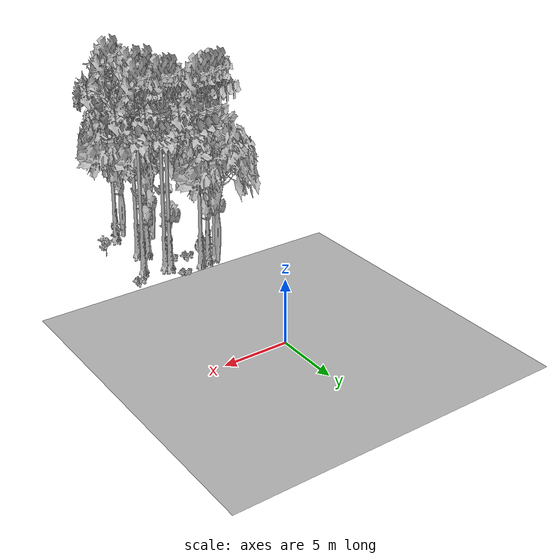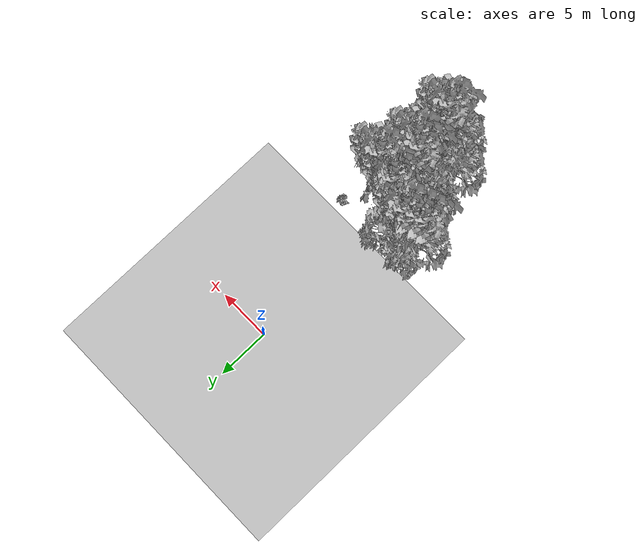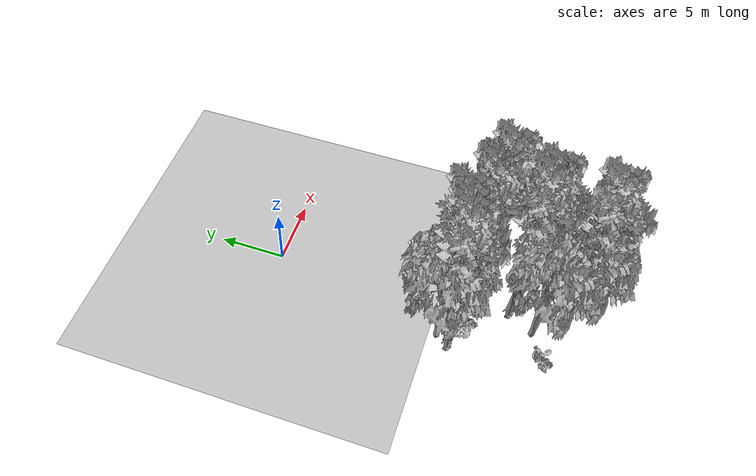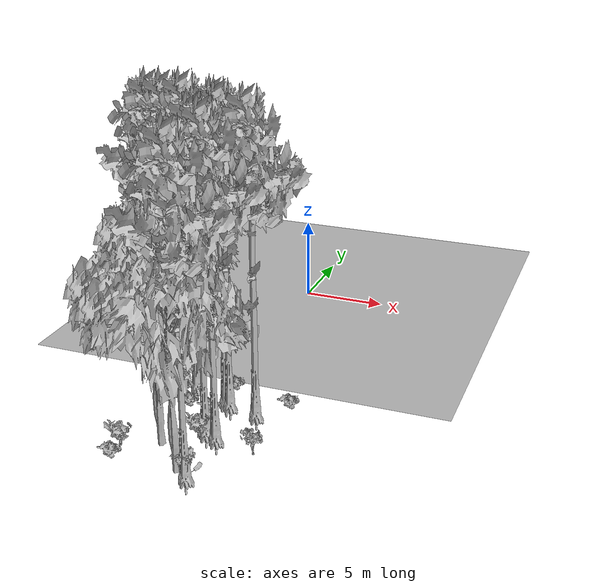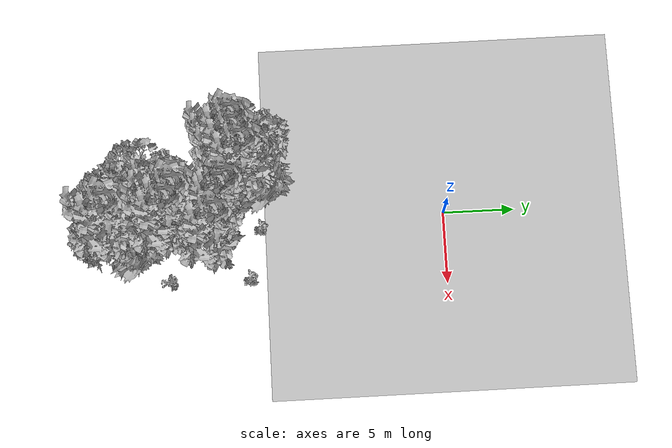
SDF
<sdf version="1.7">
 <world name="default">
  <model name="ground_plane">
   <static>1</static>
   <link name="link">
    <collision name="collision">
     <pose>-50 0 0 0 -0 0</pose>
     <geometry><plane><normal>0 0 1</normal><size>80 80</size></plane></geometry>
     <surface><contact><ode><min_depth>0.01</min_depth><max_vel>0</max_vel></ode></contact></surface>
    </collision>
    <visual name="grass">
     <cast_shadows>0</cast_shadows>
     <geometry>
      <mesh>
       <scale>0.46714285714285714 0.46714285714285714 0.1</scale>
       <uri>file://grass_plane/meshes/grass_plane.dae</uri>
      </mesh>
     </geometry>
    </visual>
   </link>
  </model>
  <model name="Tree 70">
   <static>1</static>
   <pose>-0.6018024485470406 -19.78445809399159 0 1.57079 -0 0</pose>
   <link name="link">
    <collision name="collision">
     <geometry><mesh><scale>3.5 5 3.5</scale><uri>model://tree_2/meshes/tree_2.obj</uri></mesh></geometry>
    </collision>
    <visual name="visual">
     <geometry><mesh><scale>3.5 5 3.5</scale><uri>model://tree_2/meshes/tree_2.obj</uri></mesh></geometry>
    </visual>
   </link>
  </model>
  <model name="Tree 131">
   <static>1</static>
   <pose>1.0157315180379527 -17.85142981519302 0 1.57079 -0 0</pose>
   <link name="link">
    <collision name="collision">
     <geometry><mesh><scale>3.5 5 3.5</scale><uri>model://tree_9/meshes/tree_9.obj</uri></mesh></geometry>
    </collision>
    <visual name="visual">
     <geometry><mesh><scale>3.5 5 3.5</scale><uri>model://tree_9/meshes/tree_9.obj</uri></mesh></geometry>
    </visual>
   </link>
  </model>
  <model name="Tree 163">
   <static>1</static>
   <pose>1.7488491867747058 -18.22859943218078 0 1.57079 -0 0</pose>
   <link name="link">
    <collision name="collision">
     <geometry><mesh><scale>3.5 5 3.5</scale><uri>model://tree_9/meshes/tree_9.obj</uri></mesh></geometry>
    </collision>
    <visual name="visual">
     <geometry><mesh><scale>3.5 5 3.5</scale><uri>model://tree_9/meshes/tree_9.obj</uri></mesh></geometry>
    </visual>
   </link>
  </model>
  <model name="Tree 204">
   <static>1</static>
   <pose>1.1912489022830854 -21.66701953168742 0 1.57079 -0 0</pose>
   <link name="link">
    <collision name="collision">
     <geometry><mesh><scale>3.5 5 3.5</scale><uri>model://tree_2/meshes/tree_2.obj</uri></mesh></geometry>
    </collision>
    <visual name="visual">
     <geometry><mesh><scale>3.5 5 3.5</scale><uri>model://tree_2/meshes/tree_2.obj</uri></mesh></geometry>
    </visual>
   </link>
  </model>
  <model name="Tree 239">
   <static>1</static>
   <pose>2.7457920312602084 -15.361676642353707 0 1.57079 -0 0</pose>
   <link name="link">
    <collision name="collision">
     <geometry><mesh><scale>3.5 5 3.5</scale><uri>model://tree_9/meshes/tree_9.obj</uri></mesh></geometry>
    </collision>
    <visual name="visual">
     <geometry><mesh><scale>3.5 5 3.5</scale><uri>model://tree_9/meshes/tree_9.obj</uri></mesh></geometry>
    </visual>
   </link>
  </model>
  <model name="Tree 362">
   <static>1</static>
   <pose>-2.417577925895742 -13.994678442148043 0 1.57079 -0 0</pose>
   <link name="link">
    <collision name="collision">
     <geometry><mesh><scale>3.5 5 3.5</scale><uri>model://tree_9/meshes/tree_9.obj</uri></mesh></geometry>
    </collision>
    <visual name="visual">
     <geometry><mesh><scale>3.5 5 3.5</scale><uri>model://tree_9/meshes/tree_9.obj</uri></mesh></geometry>
    </visual>
   </link>
  </model>
  <model name="Tree 397">
   <static>1</static>
   <pose>1.8534235420713046 -21.840626755412487 0 1.57079 -0 0</pose>
   <link name="link">
    <collision name="collision">
     <geometry><mesh><scale>3.5 5 3.5</scale><uri>model://tree_9/meshes/tree_9.obj</uri></mesh></geometry>
    </collision>
    <visual name="visual">
     <geometry><mesh><scale>3.5 5 3.5</scale><uri>model://tree_9/meshes/tree_9.obj</uri></mesh></geometry>
    </visual>
   </link>
  </model>
  <model name="Tree 465">
   <static>1</static>
   <pose>-1.522546526819113 -13.630317868172934 0 1.57079 -0 0</pose>
   <link name="link">
    <collision name="collision">
     <geometry><mesh><scale>3.5 5 3.5</scale><uri>model://tree_9/meshes/tree_9.obj</uri></mesh></geometry>
    </collision>
    <visual name="visual">
     <geometry><mesh><scale>3.5 5 3.5</scale><uri>model://tree_9/meshes/tree_9.obj</uri></mesh></geometry>
    </visual>
   </link>
  </model>
  <model name="Tree 491">
   <static>1</static>
   <pose>-2.9567004196304083 -13.2502914010703 0 1.57079 -0 0</pose>
   <link name="link">
    <collision name="collision">
     <geometry><mesh><scale>3.5 5 3.5</scale><uri>model://tree_2/meshes/tree_2.obj</uri></mesh></geometry>
    </collision>
    <visual name="visual">
     <geometry><mesh><scale>3.5 5 3.5</scale><uri>model://tree_2/meshes/tree_2.obj</uri></mesh></geometry>
    </visual>
   </link>
  </model>
  <model name="Tree 568">
   <static>1</static>
   <pose>-3.1547823267990154 -14.174333137918822 0 1.57079 -0 0</pose>
   <link name="link">
    <collision name="collision">
     <geometry><mesh><scale>3.5 5 3.5</scale><uri>model://tree_9/meshes/tree_9.obj</uri></mesh></geometry>
    </collision>
    <visual name="visual">
     <geometry><mesh><scale>3.5 5 3.5</scale><uri>model://tree_9/meshes/tree_9.obj</uri></mesh></geometry>
    </visual>
   </link>
  </model>
  <model name="Tree 580">
   <static>1</static>
   <pose>1.0371957064591015 -14.910055760113945 0 1.57079 -0 0</pose>
   <link name="link">
    <collision name="collision">
     <geometry><mesh><scale>3.5 5 3.5</scale><uri>model://tree_9/meshes/tree_9.obj</uri></mesh></geometry>
    </collision>
    <visual name="visual">
     <geometry><mesh><scale>3.5 5 3.5</scale><uri>model://tree_9/meshes/tree_9.obj</uri></mesh></geometry>
    </visual>
   </link>
  </model>
  <model name="Tree 582">
   <static>1</static>
   <pose>0.6984250755156367 -14.68397341802006 0 1.57079 -0 0</pose>
   <link name="link">
    <collision name="collision">
     <geometry><mesh><scale>3.5 5 3.5</scale><uri>model://tree_9/meshes/tree_9.obj</uri></mesh></geometry>
    </collision>
    <visual name="visual">
     <geometry><mesh><scale>3.5 5 3.5</scale><uri>model://tree_9/meshes/tree_9.obj</uri></mesh></geometry>
    </visual>
   </link>
  </model>
  <model name="Bush 3">
   <static>1</static>
   <pose>-1.2283496490272157 -15.367355300653145 0 1.57079 -0 0</pose>
   <link name="link">
    <collision name="collision">
     <geometry><mesh><scale>2 2 2</scale><uri>model://bush_2/meshes/bush_2.obj</uri></mesh></geometry>
     <surface><contact><collide_without_contact>false</collide_without_contact></contact></surface>
    </collision>
    <visual name="visual">
     <geometry><mesh><scale>2 2 2</scale><uri>model://bush_2/meshes/bush_2.obj</uri></mesh></geometry>
    </visual>
   </link>
  </model>
  <model name="Bush 82">
   <static>1</static>
   <pose>0.4016690390778592 -12.891419603065238 0 1.57079 -0 0</pose>
   <link name="link">
    <collision name="collision">
     <geometry><mesh><scale>2 2 2</scale><uri>model://bush_2/meshes/bush_2.obj</uri></mesh></geometry>
     <surface><contact><collide_without_contact>false</collide_without_contact></contact></surface>
    </collision>
    <visual name="visual">
     <geometry><mesh><scale>2 2 2</scale><uri>model://bush_2/meshes/bush_2.obj</uri></mesh></geometry>
    </visual>
   </link>
  </model>
  <model name="Bush 135">
   <static>1</static>
   <pose>0.9580240265418425 -18.579644345794712 0 1.57079 -0 0</pose>
   <link name="link">
    <collision name="collision">
     <geometry><mesh><scale>2 2 2</scale><uri>model://bush_0/meshes/bush_0.obj</uri></mesh></geometry>
     <surface><contact><collide_without_contact>false</collide_without_contact></contact></surface>
    </collision>
    <visual name="visual">
     <geometry><mesh><scale>2 2 2</scale><uri>model://bush_0/meshes/bush_0.obj</uri></mesh></geometry>
    </visual>
   </link>
  </model>
  <model name="Bush 232">
   <static>1</static>
   <pose>0.08614629068322444 -15.62049304209286 0 1.57079 -0 0</pose>
   <link name="link">
    <collision name="collision">
     <geometry><mesh><scale>2 2 2</scale><uri>model://bush_2/meshes/bush_2.obj</uri></mesh></geometry>
     <surface><contact><collide_without_contact>false</collide_without_contact></contact></surface>
    </collision>
    <visual name="visual">
     <geometry><mesh><scale>2 2 2</scale><uri>model://bush_2/meshes/bush_2.obj</uri></mesh></geometry>
    </visual>
   </link>
  </model>
  <model name="Bush 235">
   <static>1</static>
   <pose>1.7678566528885398 -21.77720099038489 0 1.57079 -0 0</pose>
   <link name="link">
    <collision name="collision">
     <geometry><mesh><scale>2 2 2</scale><uri>model://bush_4/meshes/bush_4.obj</uri></mesh></geometry>
     <surface><contact><collide_without_contact>false</collide_without_contact></contact></surface>
    </collision>
    <visual name="visual">
     <geometry><mesh><scale>2 2 2</scale><uri>model://bush_4/meshes/bush_4.obj</uri></mesh></geometry>
    </visual>
   </link>
  </model>
  <model name="Bush 243">
   <static>1</static>
   <pose>-2.3850924104231765 -20.570868440989614 0 1.57079 -0 0</pose>
   <link name="link">
    <collision name="collision">
     <geometry><mesh><scale>2 2 2</scale><uri>model://bush_0/meshes/bush_0.obj</uri></mesh></geometry>
     <surface><contact><collide_without_contact>false</collide_without_contact></contact></surface>
    </collision>
    <visual name="visual">
     <geometry><mesh><scale>2 2 2</scale><uri>model://bush_0/meshes/bush_0.obj</uri></mesh></geometry>
    </visual>
   </link>
  </model>
  <model name="Bush 341">
   <static>1</static>
   <pose>3.9698419932072113 -13.747108961793721 0 1.57079 -0 0</pose>
   <link name="link">
    <collision name="collision">
     <geometry><mesh><scale>2 2 2</scale><uri>model://bush_2/meshes/bush_2.obj</uri></mesh></geometry>
     <surface><contact><collide_without_contact>false</collide_without_contact></contact></surface>
    </collision>
    <visual name="visual">
     <geometry><mesh><scale>2 2 2</scale><uri>model://bush_2/meshes/bush_2.obj</uri></mesh></geometry>
    </visual>
   </link>
  </model>
  <model name="Bush 343">
   <static>1</static>
   <pose>-2.4115484826793434 -14.731960772324921 0 1.57079 -0 0</pose>
   <link name="link">
    <collision name="collision">
     <geometry><mesh><scale>2 2 2</scale><uri>model://bush_1/meshes/bush_1.obj</uri></mesh></geometry>
     <surface><contact><collide_without_contact>false</collide_without_contact></contact></surface>
    </collision>
    <visual name="visual">
     <geometry><mesh><scale>2 2 2</scale><uri>model://bush_1/meshes/bush_1.obj</uri></mesh></geometry>
    </visual>
   </link>
  </model>
  <model name="Bush 432">
   <static>1</static>
   <pose>-2.1894464501109425 -14.108217144584742 0 1.57079 -0 0</pose>
   <link name="link">
    <collision name="collision">
     <geometry><mesh><scale>2 2 2</scale><uri>model://bush_2/meshes/bush_2.obj</uri></mesh></geometry>
     <surface><contact><collide_without_contact>false</collide_without_contact></contact></surface>
    </collision>
    <visual name="visual">
     <geometry><mesh><scale>2 2 2</scale><uri>model://bush_2/meshes/bush_2.obj</uri></mesh></geometry>
    </visual>
   </link>
  </model>
  <model name="Bush 606">
   <static>1</static>
   <pose>-2.6536364239124595 -21.217867917006743 0 1.57079 -0 0</pose>
   <link name="link">
    <collision name="collision">
     <geometry><mesh><scale>2 2 2</scale><uri>model://bush_2/meshes/bush_2.obj</uri></mesh></geometry>
     <surface><contact><collide_without_contact>false</collide_without_contact></contact></surface>
    </collision>
    <visual name="visual">
     <geometry><mesh><scale>2 2 2</scale><uri>model://bush_2/meshes/bush_2.obj</uri></mesh></geometry>
    </visual>
   </link>
  </model>
  <model name="Bush 630">
   <static>1</static>
   <pose>4.186497176186201 -19.073221859654677 0 1.57079 -0 0</pose>
   <link name="link">
    <collision name="collision">
     <geometry><mesh><scale>2 2 2</scale><uri>model://bush_5/meshes/bush_5.obj</uri></mesh></geometry>
     <surface><contact><collide_without_contact>false</collide_without_contact></contact></surface>
    </collision>
    <visual name="visual">
     <geometry><mesh><scale>2 2 2</scale><uri>model://bush_5/meshes/bush_5.obj</uri></mesh></geometry>
    </visual>
   </link>
  </model>
 </world>
</sdf>
